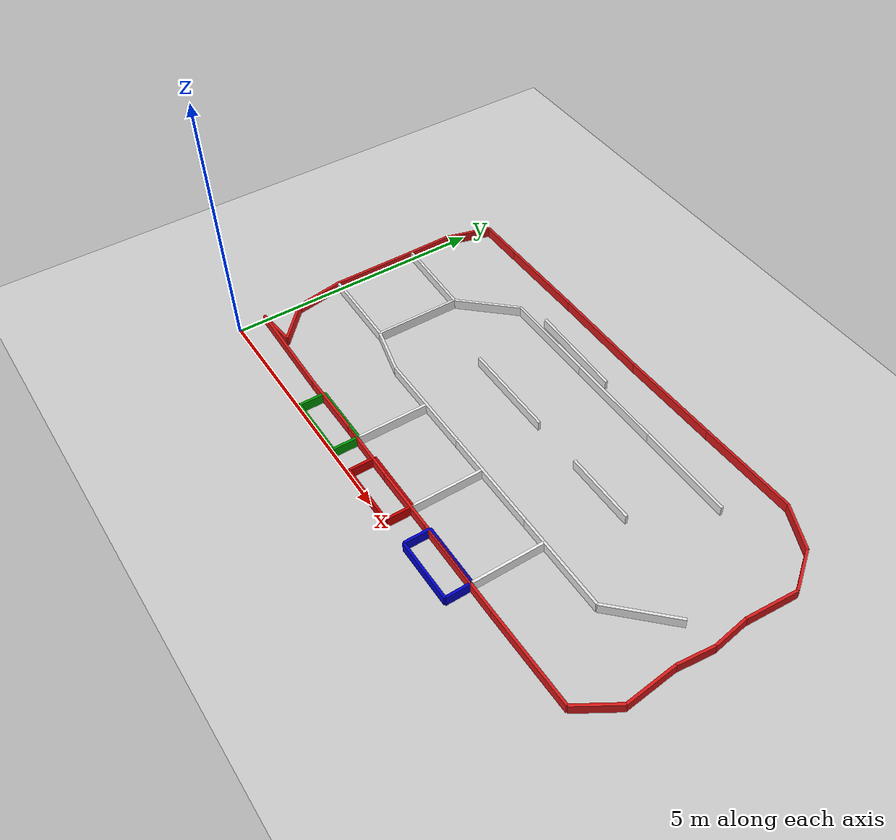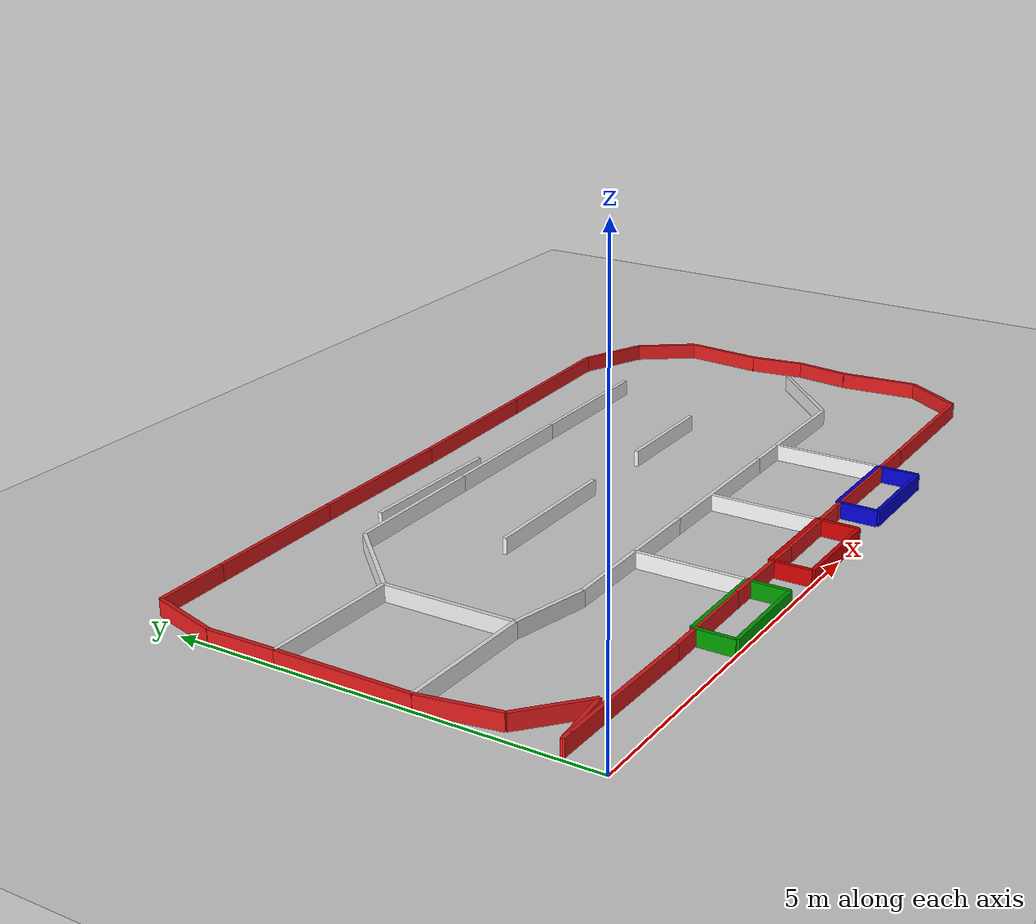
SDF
<?xml version="1.0" ?>
<sdf version="1.9">
  <world name="minicar_course">
    <physics name="1ms" type="ignored"><max_step_size>0.001</max_step_size><real_time_factor>1.0</real_time_factor></physics>
    <plugin filename="gz-sim-physics-system" name="gz::sim::systems::Physics"/>
    <plugin filename="gz-sim-user-commands-system" name="gz::sim::systems::UserCommands"/>
    <plugin filename="gz-sim-scene-broadcaster-system" name="gz::sim::systems::SceneBroadcaster"/>
    <plugin filename="gz-sim-sensors-system" name="gz::sim::systems::Sensors"><render_engine>ogre2</render_engine></plugin>
    <plugin filename="gz-sim-imu-system" name="gz::sim::systems::Imu"/>

    <light type="directional" name="sun">
      <cast_shadows>true</cast_shadows><pose>0 0 10 0 0 0</pose>
      <diffuse>1 1 1 1</diffuse><specular>0.3 0.3 0.3 1</specular>
      <direction>-0.3 0.2 -0.9</direction>
    </light>

    <model name="ground_plane">
      <static>true</static>
      <link name="link">
        <pose>5.150 2.800 0 0 0 0</pose>
        <collision name="c"><geometry><plane><normal>0 0 1</normal><size>14 9</size></plane></geometry></collision>
        <visual name="v"><geometry><plane><normal>0 0 1</normal><size>14 9</size></plane></geometry>
          <material><ambient>0.8 0.8 0.8 1</ambient><diffuse>0.8 0.8 0.8 1</diffuse></material>
        </visual>
      </link>
    </model>

    <model name="course_walls">
      <static>true</static>
    <link name="outer_0">
      <pose>1.080 0.480 0.100 0 0 -0.0194</pose>
      <collision name="c"><geometry><box><size>2.060 0.05 0.2</size></box></geometry></collision>
      <visual name="v"><geometry><box><size>2.060 0.05 0.2</size></box></geometry>
        <material><ambient>0.85 0.1 0.1 1</ambient><diffuse>0.85 0.1 0.1 1</diffuse></material>
      </visual>
    </link>
    <link name="outer_1">
      <pose>2.770 0.465 0.100 0 0 0.0076</pose>
      <collision name="c"><geometry><box><size>1.320 0.05 0.2</size></box></geometry></collision>
      <visual name="v"><geometry><box><size>1.320 0.05 0.2</size></box></geometry>
        <material><ambient>0.85 0.1 0.1 1</ambient><diffuse>0.85 0.1 0.1 1</diffuse></material>
      </visual>
    </link>
    <link name="outer_2">
      <pose>4.070 0.465 0.100 0 0 -0.0078</pose>
      <collision name="c"><geometry><box><size>1.280 0.05 0.2</size></box></geometry></collision>
      <visual name="v"><geometry><box><size>1.280 0.05 0.2</size></box></geometry>
        <material><ambient>0.85 0.1 0.1 1</ambient><diffuse>0.85 0.1 0.1 1</diffuse></material>
      </visual>
    </link>
    <link name="outer_3">
      <pose>5.350 0.465 0.100 0 0 0.0078</pose>
      <collision name="c"><geometry><box><size>1.280 0.05 0.2</size></box></geometry></collision>
      <visual name="v"><geometry><box><size>1.280 0.05 0.2</size></box></geometry>
        <material><ambient>0.85 0.1 0.1 1</ambient><diffuse>0.85 0.1 0.1 1</diffuse></material>
      </visual>
    </link>
    <link name="outer_4">
      <pose>6.960 0.470 0.100 0 0 0.0000</pose>
      <collision name="c"><geometry><box><size>1.940 0.05 0.2</size></box></geometry></collision>
      <visual name="v"><geometry><box><size>1.940 0.05 0.2</size></box></geometry>
        <material><ambient>0.85 0.1 0.1 1</ambient><diffuse>0.85 0.1 0.1 1</diffuse></material>
      </visual>
    </link>
    <link name="outer_5">
      <pose>8.890 0.480 0.100 0 0 0.0104</pose>
      <collision name="c"><geometry><box><size>1.920 0.05 0.2</size></box></geometry></collision>
      <visual name="v"><geometry><box><size>1.920 0.05 0.2</size></box></geometry>
        <material><ambient>0.85 0.1 0.1 1</ambient><diffuse>0.85 0.1 0.1 1</diffuse></material>
      </visual>
    </link>
    <link name="outer_6">
      <pose>10.075 0.845 0.100 0 0 1.0059</pose>
      <collision name="c"><geometry><box><size>0.841 0.05 0.2</size></box></geometry></collision>
      <visual name="v"><geometry><box><size>0.841 0.05 0.2</size></box></geometry>
        <material><ambient>0.85 0.1 0.1 1</ambient><diffuse>0.85 0.1 0.1 1</diffuse></material>
      </visual>
    </link>
    <link name="outer_7">
      <pose>10.255 1.695 0.100 0 0 1.6615</pose>
      <collision name="c"><geometry><box><size>0.994 0.05 0.2</size></box></geometry></collision>
      <visual name="v"><geometry><box><size>0.994 0.05 0.2</size></box></geometry>
        <material><ambient>0.85 0.1 0.1 1</ambient><diffuse>0.85 0.1 0.1 1</diffuse></material>
      </visual>
    </link>
    <link name="outer_8">
      <pose>10.250 2.535 0.100 0 0 1.4554</pose>
      <collision name="c"><geometry><box><size>0.695 0.05 0.2</size></box></geometry></collision>
      <visual name="v"><geometry><box><size>0.695 0.05 0.2</size></box></geometry>
        <material><ambient>0.85 0.1 0.1 1</ambient><diffuse>0.85 0.1 0.1 1</diffuse></material>
      </visual>
    </link>
    <link name="outer_9">
      <pose>10.240 3.225 0.100 0 0 1.7147</pose>
      <collision name="c"><geometry><box><size>0.697 0.05 0.2</size></box></geometry></collision>
      <visual name="v"><geometry><box><size>0.697 0.05 0.2</size></box></geometry>
        <material><ambient>0.85 0.1 0.1 1</ambient><diffuse>0.85 0.1 0.1 1</diffuse></material>
      </visual>
    </link>
    <link name="outer_10">
      <pose>10.225 4.070 0.100 0 0 1.5009</pose>
      <collision name="c"><geometry><box><size>1.002 0.05 0.2</size></box></geometry></collision>
      <visual name="v"><geometry><box><size>1.002 0.05 0.2</size></box></geometry>
        <material><ambient>0.85 0.1 0.1 1</ambient><diffuse>0.85 0.1 0.1 1</diffuse></material>
      </visual>
    </link>
    <link name="outer_11">
      <pose>10.020 4.900 0.100 0 0 2.1996</pose>
      <collision name="c"><geometry><box><size>0.816 0.05 0.2</size></box></geometry></collision>
      <visual name="v"><geometry><box><size>0.816 0.05 0.2</size></box></geometry>
        <material><ambient>0.85 0.1 0.1 1</ambient><diffuse>0.85 0.1 0.1 1</diffuse></material>
      </visual>
    </link>
    <link name="outer_12">
      <pose>9.365 5.415 0.100 0 0 2.7223</pose>
      <collision name="c"><geometry><box><size>0.909 0.05 0.2</size></box></geometry></collision>
      <visual name="v"><geometry><box><size>0.909 0.05 0.2</size></box></geometry>
        <material><ambient>0.85 0.1 0.1 1</ambient><diffuse>0.85 0.1 0.1 1</diffuse></material>
      </visual>
    </link>
    <link name="outer_13">
      <pose>7.975 5.575 0.100 0 0 -3.1160</pose>
      <collision name="c"><geometry><box><size>1.951 0.05 0.2</size></box></geometry></collision>
      <visual name="v"><geometry><box><size>1.951 0.05 0.2</size></box></geometry>
        <material><ambient>0.85 0.1 0.1 1</ambient><diffuse>0.85 0.1 0.1 1</diffuse></material>
      </visual>
    </link>
    <link name="outer_14">
      <pose>6.005 5.530 0.100 0 0 -3.1215</pose>
      <collision name="c"><geometry><box><size>1.990 0.05 0.2</size></box></geometry></collision>
      <visual name="v"><geometry><box><size>1.990 0.05 0.2</size></box></geometry>
        <material><ambient>0.85 0.1 0.1 1</ambient><diffuse>0.85 0.1 0.1 1</diffuse></material>
      </visual>
    </link>
    <link name="outer_15">
      <pose>4.005 5.510 0.100 0 0 3.1416</pose>
      <collision name="c"><geometry><box><size>2.010 0.05 0.2</size></box></geometry></collision>
      <visual name="v"><geometry><box><size>2.010 0.05 0.2</size></box></geometry>
        <material><ambient>0.85 0.1 0.1 1</ambient><diffuse>0.85 0.1 0.1 1</diffuse></material>
      </visual>
    </link>
    <link name="outer_16">
      <pose>2.085 5.500 0.100 0 0 -3.1307</pose>
      <collision name="c"><geometry><box><size>1.830 0.05 0.2</size></box></geometry></collision>
      <visual name="v"><geometry><box><size>1.830 0.05 0.2</size></box></geometry>
        <material><ambient>0.85 0.1 0.1 1</ambient><diffuse>0.85 0.1 0.1 1</diffuse></material>
      </visual>
    </link>
    <link name="outer_17">
      <pose>0.710 5.485 0.100 0 0 -3.1307</pose>
      <collision name="c"><geometry><box><size>0.920 0.05 0.2</size></box></geometry></collision>
      <visual name="v"><geometry><box><size>0.920 0.05 0.2</size></box></geometry>
        <material><ambient>0.85 0.1 0.1 1</ambient><diffuse>0.85 0.1 0.1 1</diffuse></material>
      </visual>
    </link>
    <link name="outer_18">
      <pose>0.125 5.045 0.100 0 0 -1.8506</pose>
      <collision name="c"><geometry><box><size>0.905 0.05 0.2</size></box></geometry></collision>
      <visual name="v"><geometry><box><size>0.905 0.05 0.2</size></box></geometry>
        <material><ambient>0.85 0.1 0.1 1</ambient><diffuse>0.85 0.1 0.1 1</diffuse></material>
      </visual>
    </link>
    <link name="outer_19">
      <pose>0.005 4.190 0.100 0 0 -1.5589</pose>
      <collision name="c"><geometry><box><size>0.840 0.05 0.2</size></box></geometry></collision>
      <visual name="v"><geometry><box><size>0.840 0.05 0.2</size></box></geometry>
        <material><ambient>0.85 0.1 0.1 1</ambient><diffuse>0.85 0.1 0.1 1</diffuse></material>
      </visual>
    </link>
    <link name="outer_20">
      <pose>0.010 2.940 0.100 0 0 -1.5708</pose>
      <collision name="c"><geometry><box><size>1.660 0.05 0.2</size></box></geometry></collision>
      <visual name="v"><geometry><box><size>1.660 0.05 0.2</size></box></geometry>
        <material><ambient>0.85 0.1 0.1 1</ambient><diffuse>0.85 0.1 0.1 1</diffuse></material>
      </visual>
    </link>
    <link name="outer_21">
      <pose>0.090 1.645 0.100 0 0 -1.4004</pose>
      <collision name="c"><geometry><box><size>0.944 0.05 0.2</size></box></geometry></collision>
      <visual name="v"><geometry><box><size>0.944 0.05 0.2</size></box></geometry>
        <material><ambient>0.85 0.1 0.1 1</ambient><diffuse>0.85 0.1 0.1 1</diffuse></material>
      </visual>
    </link>
    <link name="outer_22">
      <pose>0.505 0.880 0.100 0 0 -0.7303</pose>
      <collision name="c"><geometry><box><size>0.899 0.05 0.2</size></box></geometry></collision>
      <visual name="v"><geometry><box><size>0.899 0.05 0.2</size></box></geometry>
        <material><ambient>0.85 0.1 0.1 1</ambient><diffuse>0.85 0.1 0.1 1</diffuse></material>
      </visual>
    </link>
    <link name="outer_23">
      <pose>0.445 0.540 0.100 0 0 -3.0407</pose>
      <collision name="c"><geometry><box><size>0.794 0.05 0.2</size></box></geometry></collision>
      <visual name="v"><geometry><box><size>0.794 0.05 0.2</size></box></geometry>
        <material><ambient>0.85 0.1 0.1 1</ambient><diffuse>0.85 0.1 0.1 1</diffuse></material>
      </visual>
    </link>
    <link name="inner0_0">
      <pose>0.855 3.745 0.100 0 0 -0.0296</pose>
      <collision name="c"><geometry><box><size>1.691 0.05 0.2</size></box></geometry></collision>
      <visual name="v"><geometry><box><size>1.691 0.05 0.2</size></box></geometry>
        <material><ambient>0.9 0.9 0.9 1</ambient><diffuse>0.9 0.9 0.9 1</diffuse></material>
      </visual>
    </link>
    <link name="inner0_1">
      <pose>1.700 2.900 0.100 0 0 -1.5708</pose>
      <collision name="c"><geometry><box><size>1.640 0.05 0.2</size></box></geometry></collision>
      <visual name="v"><geometry><box><size>1.640 0.05 0.2</size></box></geometry>
        <material><ambient>0.9 0.9 0.9 1</ambient><diffuse>0.9 0.9 0.9 1</diffuse></material>
      </visual>
    </link>
    <link name="inner0_2">
      <pose>0.855 2.095 0.100 0 0 3.1238</pose>
      <collision name="c"><geometry><box><size>1.690 0.05 0.2</size></box></geometry></collision>
      <visual name="v"><geometry><box><size>1.690 0.05 0.2</size></box></geometry>
        <material><ambient>0.9 0.9 0.9 1</ambient><diffuse>0.9 0.9 0.9 1</diffuse></material>
      </visual>
    </link>
    <link name="inner1_0">
      <pose>2.145 4.190 0.100 0 0 0.8127</pose>
      <collision name="c"><geometry><box><size>1.294 0.05 0.2</size></box></geometry></collision>
      <visual name="v"><geometry><box><size>1.294 0.05 0.2</size></box></geometry>
        <material><ambient>0.9 0.9 0.9 1</ambient><diffuse>0.9 0.9 0.9 1</diffuse></material>
      </visual>
    </link>
    <link name="inner1_1">
      <pose>3.550 4.660 0.100 0 0 0.0000</pose>
      <collision name="c"><geometry><box><size>1.920 0.05 0.2</size></box></geometry></collision>
      <visual name="v"><geometry><box><size>1.920 0.05 0.2</size></box></geometry>
        <material><ambient>0.9 0.9 0.9 1</ambient><diffuse>0.9 0.9 0.9 1</diffuse></material>
      </visual>
    </link>
    <link name="inner1_2">
      <pose>5.495 4.660 0.100 0 0 0.0000</pose>
      <collision name="c"><geometry><box><size>1.970 0.05 0.2</size></box></geometry></collision>
      <visual name="v"><geometry><box><size>1.970 0.05 0.2</size></box></geometry>
        <material><ambient>0.9 0.9 0.9 1</ambient><diffuse>0.9 0.9 0.9 1</diffuse></material>
      </visual>
    </link>
    <link name="inner1_3">
      <pose>7.440 4.660 0.100 0 0 0.0000</pose>
      <collision name="c"><geometry><box><size>1.920 0.05 0.2</size></box></geometry></collision>
      <visual name="v"><geometry><box><size>1.920 0.05 0.2</size></box></geometry>
        <material><ambient>0.9 0.9 0.9 1</ambient><diffuse>0.9 0.9 0.9 1</diffuse></material>
      </visual>
    </link>
    <link name="inner2_0">
      <pose>4.105 4.840 0.100 0 0 -0.0205</pose>
      <collision name="c"><geometry><box><size>1.950 0.05 0.2</size></box></geometry></collision>
      <visual name="v"><geometry><box><size>1.950 0.05 0.2</size></box></geometry>
        <material><ambient>0.9 0.9 0.9 1</ambient><diffuse>0.9 0.9 0.9 1</diffuse></material>
      </visual>
    </link>
    <link name="inner3_0">
      <pose>4.250 3.260 0.100 0 0 0.0000</pose>
      <collision name="c"><geometry><box><size>1.920 0.05 0.2</size></box></geometry></collision>
      <visual name="v"><geometry><box><size>1.920 0.05 0.2</size></box></geometry>
        <material><ambient>0.9 0.9 0.9 1</ambient><diffuse>0.9 0.9 0.9 1</diffuse></material>
      </visual>
    </link>
    <link name="inner4_0">
      <pose>6.955 3.260 0.100 0 0 0.0000</pose>
      <collision name="c"><geometry><box><size>1.430 0.05 0.2</size></box></geometry></collision>
      <visual name="v"><geometry><box><size>1.430 0.05 0.2</size></box></geometry>
        <material><ambient>0.9 0.9 0.9 1</ambient><diffuse>0.9 0.9 0.9 1</diffuse></material>
      </visual>
    </link>
    <link name="inner5_0">
      <pose>2.175 1.970 0.100 0 0 -0.2276</pose>
      <collision name="c"><geometry><box><size>0.975 0.05 0.2</size></box></geometry></collision>
      <visual name="v"><geometry><box><size>0.975 0.05 0.2</size></box></geometry>
        <material><ambient>0.9 0.9 0.9 1</ambient><diffuse>0.9 0.9 0.9 1</diffuse></material>
      </visual>
    </link>
    <link name="inner6_0">
      <pose>3.695 1.860 0.100 0 0 0.0000</pose>
      <collision name="c"><geometry><box><size>2.090 0.05 0.2</size></box></geometry></collision>
      <visual name="v"><geometry><box><size>2.090 0.05 0.2</size></box></geometry>
        <material><ambient>0.9 0.9 0.9 1</ambient><diffuse>0.9 0.9 0.9 1</diffuse></material>
      </visual>
    </link>
    <link name="inner6_1">
      <pose>5.770 1.860 0.100 0 0 0.0000</pose>
      <collision name="c"><geometry><box><size>2.060 0.05 0.2</size></box></geometry></collision>
      <visual name="v"><geometry><box><size>2.060 0.05 0.2</size></box></geometry>
        <material><ambient>0.9 0.9 0.9 1</ambient><diffuse>0.9 0.9 0.9 1</diffuse></material>
      </visual>
    </link>
    <link name="inner6_2">
      <pose>7.765 1.860 0.100 0 0 0.0000</pose>
      <collision name="c"><geometry><box><size>1.930 0.05 0.2</size></box></geometry></collision>
      <visual name="v"><geometry><box><size>1.930 0.05 0.2</size></box></geometry>
        <material><ambient>0.9 0.9 0.9 1</ambient><diffuse>0.9 0.9 0.9 1</diffuse></material>
      </visual>
    </link>
    <link name="inner7_0">
      <pose>9.220 2.340 0.100 0 0 -2.3665</pose>
      <collision name="c"><geometry><box><size>1.372 0.05 0.2</size></box></geometry></collision>
      <visual name="v"><geometry><box><size>1.372 0.05 0.2</size></box></geometry>
        <material><ambient>0.9 0.9 0.9 1</ambient><diffuse>0.9 0.9 0.9 1</diffuse></material>
      </visual>
    </link>
    <link name="start0_0">
      <pose>3.740 1.180 0.100 0 0 1.5708</pose>
      <collision name="c"><geometry><box><size>1.360 0.05 0.2</size></box></geometry></collision>
      <visual name="v"><geometry><box><size>1.360 0.05 0.2</size></box></geometry>
        <material><ambient>0.95 0.95 0.95 1</ambient><diffuse>0.95 0.95 0.95 1</diffuse></material>
      </visual>
    </link>
    <link name="start1_0">
      <pose>5.540 1.180 0.100 0 0 1.5708</pose>
      <collision name="c"><geometry><box><size>1.360 0.05 0.2</size></box></geometry></collision>
      <visual name="v"><geometry><box><size>1.360 0.05 0.2</size></box></geometry>
        <material><ambient>0.95 0.95 0.95 1</ambient><diffuse>0.95 0.95 0.95 1</diffuse></material>
      </visual>
    </link>
    <link name="start2_0">
      <pose>7.340 1.180 0.100 0 0 1.5708</pose>
      <collision name="c"><geometry><box><size>1.360 0.05 0.2</size></box></geometry></collision>
      <visual name="v"><geometry><box><size>1.360 0.05 0.2</size></box></geometry>
        <material><ambient>0.95 0.95 0.95 1</ambient><diffuse>0.95 0.95 0.95 1</diffuse></material>
      </visual>
    </link>
    <link name="box_P1_0">
      <pose>3.120 0.000 0.100 0 0 0.0000</pose>
      <collision name="c"><geometry><box><size>1.240 0.05 0.2</size></box></geometry></collision>
      <visual name="v"><geometry><box><size>1.240 0.05 0.2</size></box></geometry>
        <material><ambient>0.0 0.6 0.0 1</ambient><diffuse>0.0 0.6 0.0 1</diffuse></material>
      </visual>
    </link>
    <link name="box_P1_1">
      <pose>3.740 0.250 0.100 0 0 1.5708</pose>
      <collision name="c"><geometry><box><size>0.500 0.05 0.2</size></box></geometry></collision>
      <visual name="v"><geometry><box><size>0.500 0.05 0.2</size></box></geometry>
        <material><ambient>0.0 0.6 0.0 1</ambient><diffuse>0.0 0.6 0.0 1</diffuse></material>
      </visual>
    </link>
    <link name="box_P1_2">
      <pose>3.120 0.500 0.100 0 0 3.1416</pose>
      <collision name="c"><geometry><box><size>1.240 0.05 0.2</size></box></geometry></collision>
      <visual name="v"><geometry><box><size>1.240 0.05 0.2</size></box></geometry>
        <material><ambient>0.0 0.6 0.0 1</ambient><diffuse>0.0 0.6 0.0 1</diffuse></material>
      </visual>
    </link>
    <link name="box_P1_3">
      <pose>2.500 0.250 0.100 0 0 -1.5708</pose>
      <collision name="c"><geometry><box><size>0.500 0.05 0.2</size></box></geometry></collision>
      <visual name="v"><geometry><box><size>0.500 0.05 0.2</size></box></geometry>
        <material><ambient>0.0 0.6 0.0 1</ambient><diffuse>0.0 0.6 0.0 1</diffuse></material>
      </visual>
    </link>
    <link name="box_P2_0">
      <pose>4.920 0.000 0.100 0 0 0.0000</pose>
      <collision name="c"><geometry><box><size>1.240 0.05 0.2</size></box></geometry></collision>
      <visual name="v"><geometry><box><size>1.240 0.05 0.2</size></box></geometry>
        <material><ambient>0.8 0.0 0.0 1</ambient><diffuse>0.8 0.0 0.0 1</diffuse></material>
      </visual>
    </link>
    <link name="box_P2_1">
      <pose>5.540 0.250 0.100 0 0 1.5708</pose>
      <collision name="c"><geometry><box><size>0.500 0.05 0.2</size></box></geometry></collision>
      <visual name="v"><geometry><box><size>0.500 0.05 0.2</size></box></geometry>
        <material><ambient>0.8 0.0 0.0 1</ambient><diffuse>0.8 0.0 0.0 1</diffuse></material>
      </visual>
    </link>
    <link name="box_P2_2">
      <pose>4.920 0.500 0.100 0 0 3.1416</pose>
      <collision name="c"><geometry><box><size>1.240 0.05 0.2</size></box></geometry></collision>
      <visual name="v"><geometry><box><size>1.240 0.05 0.2</size></box></geometry>
        <material><ambient>0.8 0.0 0.0 1</ambient><diffuse>0.8 0.0 0.0 1</diffuse></material>
      </visual>
    </link>
    <link name="box_P2_3">
      <pose>4.300 0.250 0.100 0 0 -1.5708</pose>
      <collision name="c"><geometry><box><size>0.500 0.05 0.2</size></box></geometry></collision>
      <visual name="v"><geometry><box><size>0.500 0.05 0.2</size></box></geometry>
        <material><ambient>0.8 0.0 0.0 1</ambient><diffuse>0.8 0.0 0.0 1</diffuse></material>
      </visual>
    </link>
    <link name="box_P3_0">
      <pose>6.720 0.000 0.100 0 0 0.0000</pose>
      <collision name="c"><geometry><box><size>1.240 0.05 0.2</size></box></geometry></collision>
      <visual name="v"><geometry><box><size>1.240 0.05 0.2</size></box></geometry>
        <material><ambient>0.0 0.0 0.8 1</ambient><diffuse>0.0 0.0 0.8 1</diffuse></material>
      </visual>
    </link>
    <link name="box_P3_1">
      <pose>7.340 0.250 0.100 0 0 1.5708</pose>
      <collision name="c"><geometry><box><size>0.500 0.05 0.2</size></box></geometry></collision>
      <visual name="v"><geometry><box><size>0.500 0.05 0.2</size></box></geometry>
        <material><ambient>0.0 0.0 0.8 1</ambient><diffuse>0.0 0.0 0.8 1</diffuse></material>
      </visual>
    </link>
    <link name="box_P3_2">
      <pose>6.720 0.500 0.100 0 0 3.1416</pose>
      <collision name="c"><geometry><box><size>1.240 0.05 0.2</size></box></geometry></collision>
      <visual name="v"><geometry><box><size>1.240 0.05 0.2</size></box></geometry>
        <material><ambient>0.0 0.0 0.8 1</ambient><diffuse>0.0 0.0 0.8 1</diffuse></material>
      </visual>
    </link>
    <link name="box_P3_3">
      <pose>6.100 0.250 0.100 0 0 -1.5708</pose>
      <collision name="c"><geometry><box><size>0.500 0.05 0.2</size></box></geometry></collision>
      <visual name="v"><geometry><box><size>0.500 0.05 0.2</size></box></geometry>
        <material><ambient>0.0 0.0 0.8 1</ambient><diffuse>0.0 0.0 0.8 1</diffuse></material>
      </visual>
    </link>
    </model>
  </world>
</sdf>
